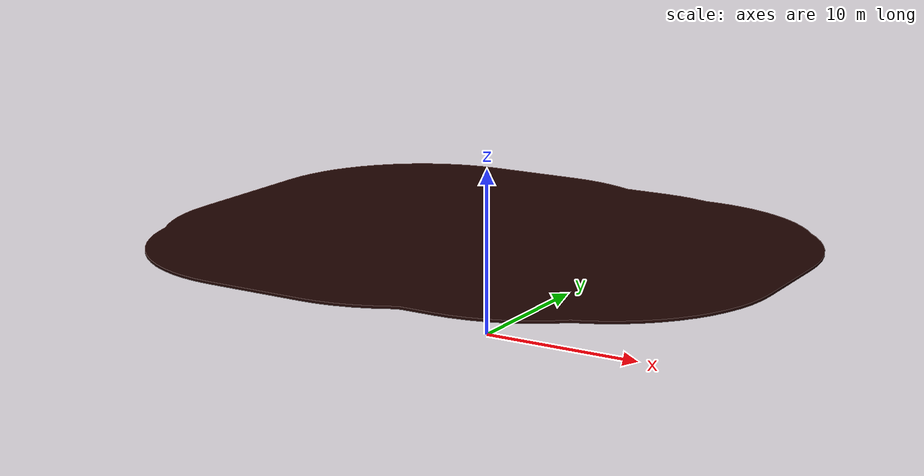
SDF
<?xml version="1.0" ?>
<sdf version="1.6">
  <model name="ceiling_10">
    <pose frame="">0 0 6 0 -0 0</pose>
    <static>1</static>
    <self_collide>0</self_collide>
    <allow_auto_disable>0</allow_auto_disable>
    <link name="mesh">
      <kinematic>0</kinematic>
      <gravity>1</gravity>
      <self_collide>0</self_collide>
      <collision name="collision">
        <geometry>
          <mesh>
            <uri>model://ceiling_10/meshes/MlVkdwADxX.stl</uri>
            <scale>1 1 1</scale>
          </mesh>
        </geometry>
        <pose frame="">-3.09795 -7.93164 -0.075 0 -0 0</pose>
        <max_contacts>20</max_contacts>
      </collision>
      <visual name="visual">
        <geometry>
          <mesh>
            <uri>model://ceiling_10/meshes/muIWsphSSW.stl</uri>
            <scale>1 1 1</scale>
          </mesh>
        </geometry>
        <material>
          <ambient>0.113725 0.00784314 0 1</ambient>
          <diffuse>0.11372549019607843 0.00784313725490196 0.0 1</diffuse>
        </material>
        <pose frame="">-3.09795 -7.93164 -0.075 0 -0 0</pose>
        <cast_shadows>1</cast_shadows>
        <transparency>0.0</transparency>
      </visual>
      <pose frame="">0 0 0 0 -0 0</pose>
    </link>
  </model>
</sdf>
